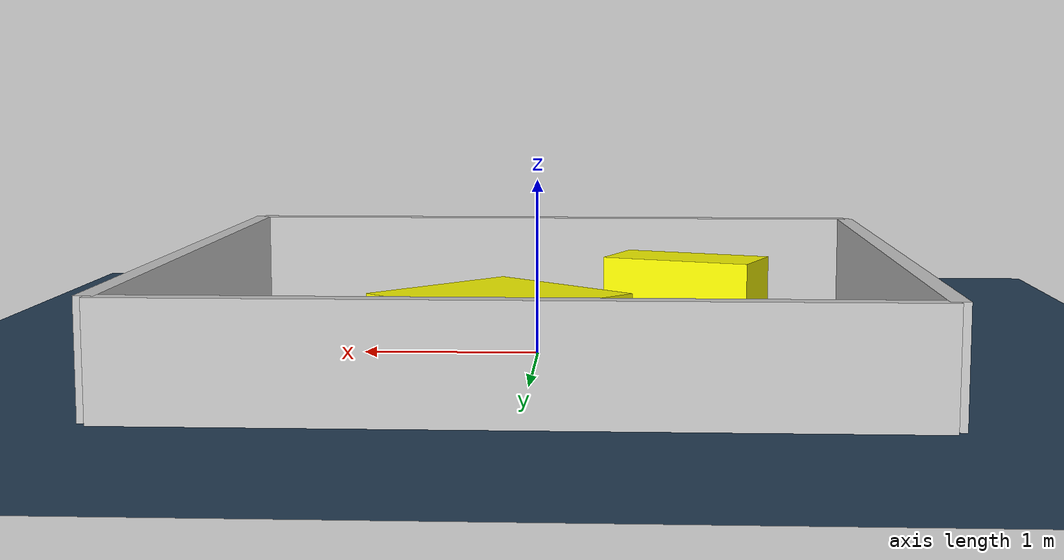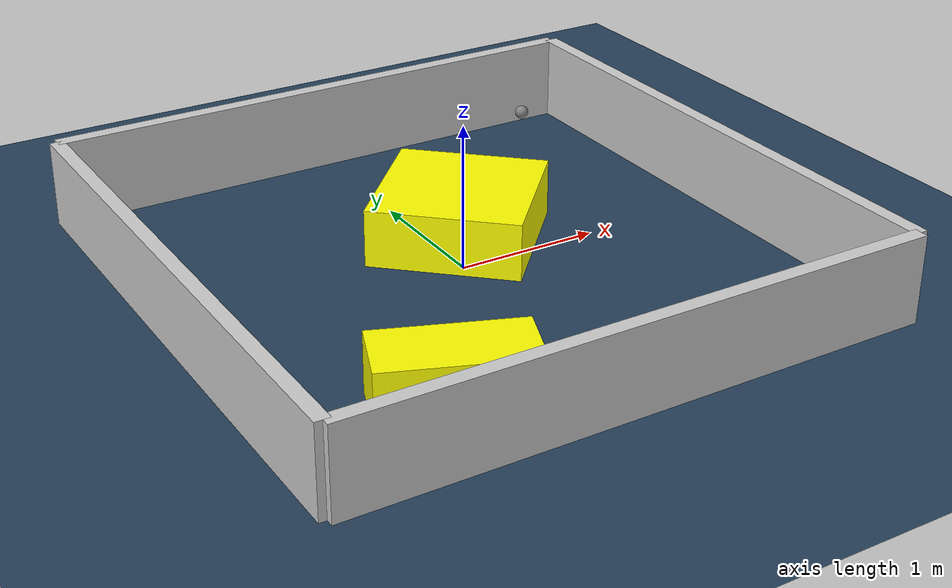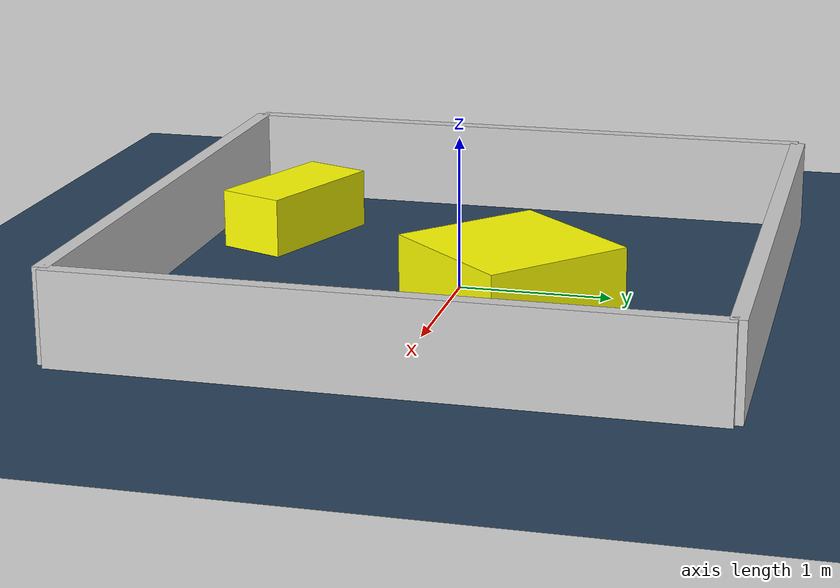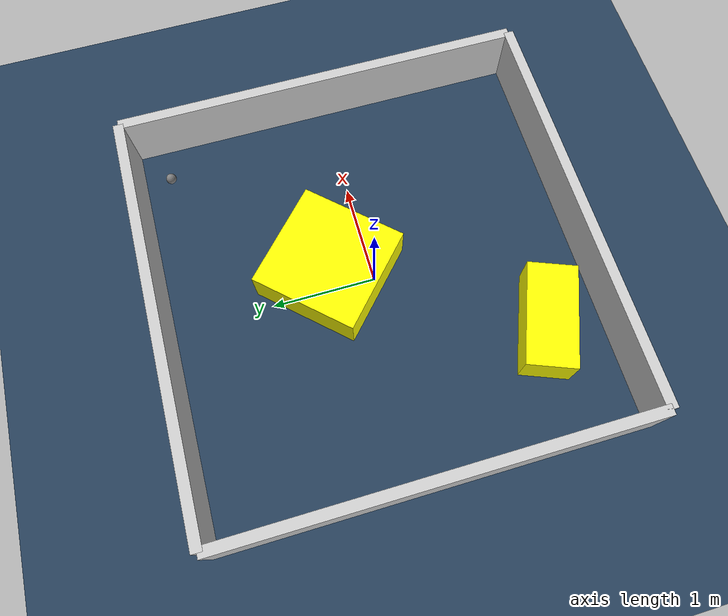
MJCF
<?xml version="1.0" ?>
<mujoco model="generated_environment">
  <option timestep="0.01" integrator="RK4" cone="elliptic"/>
  <default>
    <geom density="1"/>
  </default>
  <asset>
    <texture builtin="gradient" height="3072" rgb1="0.3 0.5 0.7" rgb2="0 0 0" type="skybox" width="512"/>
    <texture builtin="checker" height="300" mark="edge" markrgb="0.8 0.8 0.8" name="groundplane" rgb1="0.2 0.3 0.4" rgb2="0.1 0.2 0.3" type="2d" width="300"/>
    <material name="groundplane" reflectance="0.2" texrepeat="5 5" texture="groundplane" texuniform="true"/>
    <material name="robot" rgba="0.0 1.0 0.0 1"/>
  </asset>
  <worldbody>
    <light dir="0 0 -1" directional="true" pos="0 0 1.5"/>
    <geom condim="4" friction="1.0 0.005 0.001" material="groundplane" name="floor" size="0 0 0.05" type="plane"/>
    <body name="walls">
      <geom name="wall_1" condim="4" pos="-2.0 0.0 0.3" rgba="0.800000011920929 0.800000011920929 0.800000011920929 1.0" size="0.05 2.0 0.3" type="box"/>
      <geom name="wall_2" condim="4" pos="2.0 0.0 0.3" rgba="0.800000011920929 0.800000011920929 0.800000011920929 1.0" size="0.05 2.0 0.3" type="box"/>
      <geom name="wall_3" condim="4" pos="0.0 -2.0 0.3" rgba="0.800000011920929 0.800000011920929 0.800000011920929 1.0" size="2.0 0.05 0.3" type="box"/>
      <geom name="wall_4" condim="4" pos="0.0 2.0 0.3" rgba="0.800000011920929 0.800000011920929 0.800000011920929 1.0" size="2.0 0.05 0.3" type="box"/>
    </body>
    <body name="robot">
      <joint name="joint_x" type="slide" pos="0 0 0" axis="1 0 0"/>
      <joint name="joint_y" type="slide" pos="0 0 0" axis="0 1 0"/>
      <geom name="robot" type="sphere" pos="1.5204621606617734 1.6676565749211414 0.2" size="0.05" mass="5." friction="1.0 0.005 0.0001" condim="4"/>
      <site name="sensor_ball"/>
    </body>
    <body name="obstacle_1_movable">
      <geom name="obstacle_1_movable" condim="4" pos="0.19479958071814707 0.38472627350973765 0.2" euler="0 0 137.26748717747435" friction="1.0 0.005 0.001" rgba="1 1 0 1" size="0.5182574601366028 0.5210722566531034 0.2" type="box" mass="0.1"/>
      <joint type="free"/>
    </body>
    <body name="obstacle_2_movable">
      <geom name="obstacle_2_movable" condim="4" pos="-0.9022981144203208 -1.4071162068013767 0.2" euler="0 0 248.7247256355229" friction="1.0 0.005 0.001" rgba="1 1 0 1" size="0.23555511959180017 0.4863054875555253 0.2" type="box" mass="0.1"/>
      <joint type="free"/>
    </body>
  </worldbody>
  <actuator>
    <motor name="actuator_x" joint="joint_x" gear="1" ctrlrange="-1 1"/>
    <motor name="actuator_y" joint="joint_y" gear="1" ctrlrange="-1 1"/>
  </actuator>
</mujoco>
